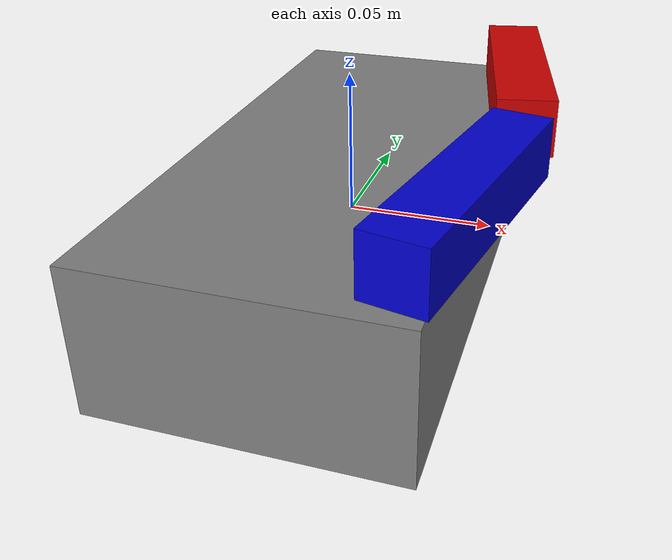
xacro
<?xml version="1.0"?>
<robot name="dual_camera_setup" xmlns:xacro="http://www.ros.org/wiki/xacro">
  <!-- Base link -->
  <link name="base_link">
    <visual>
      <geometry>
        <box size="0.1 0.2 0.05"/>
      </geometry>
      <material name="grey">
        <color rgba="0.5 0.5 0.5 1"/>
      </material>
    </visual>
    <collision>
      <geometry>
        <box size="0.1 0.2 0.05"/>
      </geometry>
    </collision>
    <inertial>
      <mass value="0.5"/>
      <inertia ixx="0.001" ixy="0.0" ixz="0.0" iyy="0.001" iyz="0.0" izz="0.001"/>
    </inertial>
  </link>

  <!-- Camera 1 link -->
  <link name="camera1_link">
    <visual>
      <geometry>
        <box size="0.02 0.09 0.02"/>
      </geometry>
      <material name="blue">
        <color rgba="0 0 0.8 1"/>
      </material>
    </visual>
    <collision>
      <geometry>
        <box size="0.02 0.09 0.02"/>
      </geometry>
    </collision>
    <inertial>
      <mass value="0.1"/>
      <inertia ixx="0.0001" ixy="0.0" ixz="0.0" iyy="0.0001" iyz="0.0" izz="0.0001"/>
    </inertial>
  </link>

  <!-- Camera 2 link -->
  <link name="camera2_link">
    <visual>
      <geometry>
        <box size="0.02 0.09 0.02"/>
      </geometry>
      <material name="red">
        <color rgba="0.8 0 0 1"/>
      </material>
    </visual>
    <collision>
      <geometry>
        <box size="0.02 0.09 0.02"/>
      </geometry>
    </collision>
    <inertial>
      <mass value="0.1"/>
      <inertia ixx="0.0001" ixy="0.0" ixz="0.0" iyy="0.0001" iyz="0.0" izz="0.0001"/>
    </inertial>
  </link>

  <!-- Joint for Camera 1 -->
  <joint name="base_to_camera1" type="fixed">
    <parent link="base_link"/>
    <child link="camera1_link"/>
    <origin xyz="0.05 -0.05 0.035" rpy="0 0 -0.2"/>
    <axis xyz="0 0 1"/>
  </joint>

  <!-- Joint for Camera 2 -->
  <joint name="base_to_camera2" type="fixed">
    <parent link="base_link"/>
    <child link="camera2_link"/>
    <origin xyz="0.05 0.05 0.035" rpy="0 0 0.2"/>
    <axis xyz="0 0 1"/>
  </joint>

  <!-- Camera 1 RGB optical frame -->
  <link name="camera1_rgb_optical_frame"/>
  <joint name="camera1_to_rgb_optical" type="fixed">
    <parent link="camera1_link"/>
    <child link="camera1_rgb_optical_frame"/>
    <origin xyz="0 0 0" rpy="-1.5708 0 -1.5708"/>
  </joint>

  <!-- Camera 1 depth optical frame -->
  <link name="camera1_depth_optical_frame"/>
  <joint name="camera1_to_depth_optical" type="fixed">
    <parent link="camera1_link"/>
    <child link="camera1_depth_optical_frame"/>
    <origin xyz="0 0.02 0" rpy="-1.5708 0 -1.5708"/>
  </joint>

  <!-- Camera 2 RGB optical frame -->
  <link name="camera2_rgb_optical_frame"/>
  <joint name="camera2_to_rgb_optical" type="fixed">
    <parent link="camera2_link"/>
    <child link="camera2_rgb_optical_frame"/>
    <origin xyz="0 0 0" rpy="-1.5708 0 -1.5708"/>
  </joint>

  <!-- Camera 2 depth optical frame -->
  <link name="camera2_depth_optical_frame"/>
  <joint name="camera2_to_depth_optical" type="fixed">
    <parent link="camera2_link"/>
    <child link="camera2_depth_optical_frame"/>
    <origin xyz="0 0.02 0" rpy="-1.5708 0 -1.5708"/>
  </joint>

  <!-- Camera 1 RGB sensor -->
  <gazebo reference="camera1_link">
    <sensor type="camera" name="camera1_rgb">
      <update_rate>30.0</update_rate>
      <camera name="camera1_rgb">
        <horizontal_fov>1.047</horizontal_fov>
        <image>
          <width>640</width>
          <height>480</height>
          <format>R8G8B8</format>
        </image>
        <clip>
          <near>0.1</near>
          <far>3.0</far>
        </clip>
      </camera>
      <plugin name="camera1_rgb_controller" filename="libgazebo_ros_camera.so">
        <alwaysOn>true</alwaysOn>
        <updateRate>0.0</updateRate>
        <cameraName>camera1/rgb</cameraName>
        <imageTopicName>image_raw</imageTopicName>
        <cameraInfoTopicName>camera_info</cameraInfoTopicName>
        <frameName>camera1_rgb_optical_frame</frameName>
        <hackBaseline>0.07</hackBaseline>
        <distortionK1>0.0</distortionK1>
        <distortionK2>0.0</distortionK2>
        <distortionK3>0.0</distortionK3>
        <distortionT1>0.0</distortionT1>
        <distortionT2>0.0</distortionT2>
      </plugin>
    </sensor>
  </gazebo>

  <!-- Camera 1 depth sensor -->
  <gazebo reference="camera1_link">
    <sensor type="depth" name="camera1_depth">
      <update_rate>30.0</update_rate>
      <camera name="camera1_depth">
        <horizontal_fov>1.047</horizontal_fov>
        <image>
          <width>640</width>
          <height>480</height>
          <format>R8G8B8</format>
        </image>
        <clip>
          <near>0.1</near>
          <far>3.0</far>
        </clip>
      </camera>
      <plugin name="camera1_depth_controller" filename="libgazebo_ros_openni_kinect.so">
        <alwaysOn>true</alwaysOn>
        <updateRate>0.0</updateRate>
        <cameraName>camera1</cameraName>
        <imageTopicName>depth/image_raw</imageTopicName>
        <cameraInfoTopicName>depth/camera_info</cameraInfoTopicName>
        <depthImageTopicName>depth/image_raw</depthImageTopicName>
        <depthImageCameraInfoTopicName>depth/camera_info</depthImageCameraInfoTopicName>
        <pointCloudTopicName>depth/points</pointCloudTopicName>
        <frameName>camera1_depth_optical_frame</frameName>
        <pointCloudCutoff>0.1</pointCloudCutoff>
        <pointCloudCutoffMax>3.0</pointCloudCutoffMax>
        <distortionK1>0.0</distortionK1>
        <distortionK2>0.0</distortionK2>
        <distortionK3>0.0</distortionK3>
        <distortionT1>0.0</distortionT1>
        <distortionT2>0.0</distortionT2>
        <CxPrime>0</CxPrime>
        <Cx>0</Cx>
        <Cy>0</Cy>
        <focalLength>0</focalLength>
        <hackBaseline>0</hackBaseline>
      </plugin>
    </sensor>
  </gazebo>

  <!-- Camera 2 RGB sensor -->
  <gazebo reference="camera2_link">
    <sensor type="camera" name="camera2_rgb">
      <update_rate>30.0</update_rate>
      <camera name="camera2_rgb">
        <horizontal_fov>1.047</horizontal_fov>
        <image>
          <width>640</width>
          <height>480</height>
          <format>R8G8B8</format>
        </image>
        <clip>
          <near>0.1</near>
          <far>3.0</far>
        </clip>
      </camera>
      <plugin name="camera2_rgb_controller" filename="libgazebo_ros_camera.so">
        <alwaysOn>true</alwaysOn>
        <updateRate>0.0</updateRate>
        <cameraName>camera2/rgb</cameraName>
        <imageTopicName>image_raw</imageTopicName>
        <cameraInfoTopicName>camera_info</cameraInfoTopicName>
        <frameName>camera2_rgb_optical_frame</frameName>
        <hackBaseline>0.07</hackBaseline>
        <distortionK1>0.0</distortionK1>
        <distortionK2>0.0</distortionK2>
        <distortionK3>0.0</distortionK3>
        <distortionT1>0.0</distortionT1>
        <distortionT2>0.0</distortionT2>
      </plugin>
    </sensor>
  </gazebo>

  <!-- Camera 2 depth sensor -->
  <gazebo reference="camera2_link">
    <sensor type="depth" name="camera2_depth">
      <update_rate>30.0</update_rate>
      <camera name="camera2_depth">
        <horizontal_fov>1.047</horizontal_fov>
        <image>
          <width>640</width>
          <height>480</height>
          <format>R8G8B8</format>
        </image>
        <clip>
          <near>0.1</near>
          <far>3.0</far>
        </clip>
      </camera>
      <plugin name="camera2_depth_controller" filename="libgazebo_ros_openni_kinect.so">
        <alwaysOn>true</alwaysOn>
        <updateRate>0.0</updateRate>
        <cameraName>camera2</cameraName>
        <imageTopicName>depth/image_raw</imageTopicName>
        <cameraInfoTopicName>depth/camera_info</cameraInfoTopicName>
        <depthImageTopicName>depth/image_raw</depthImageTopicName>
        <depthImageCameraInfoTopicName>depth/camera_info</depthImageCameraInfoTopicName>
        <pointCloudTopicName>depth/points</pointCloudTopicName>
        <frameName>camera2_depth_optical_frame</frameName>
        <pointCloudCutoff>0.1</pointCloudCutoff>
        <pointCloudCutoffMax>3.0</pointCloudCutoffMax>
        <distortionK1>0.0</distortionK1>
        <distortionK2>0.0</distortionK2>
        <distortionK3>0.0</distortionK3>
        <distortionT1>0.0</distortionT1>
        <distortionT2>0.0</distortionT2>
        <CxPrime>0</CxPrime>
        <Cx>0</Cx>
        <Cy>0</Cy>
        <focalLength>0</focalLength>
        <hackBaseline>0</hackBaseline>
      </plugin>
    </sensor>
  </gazebo>
</robot>
